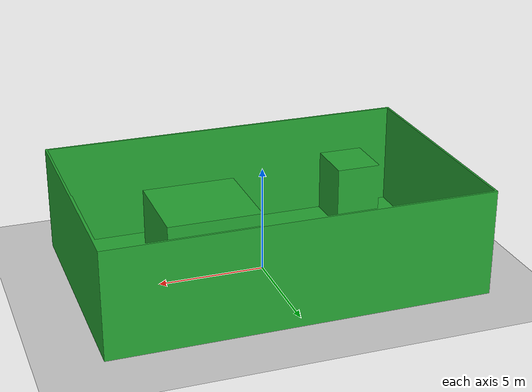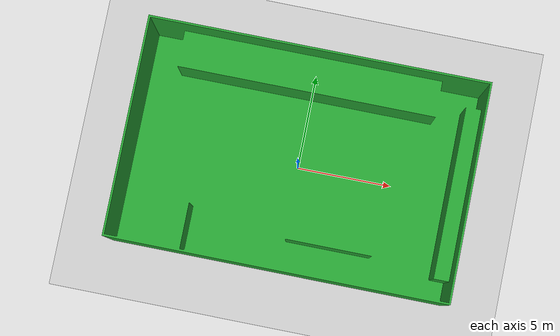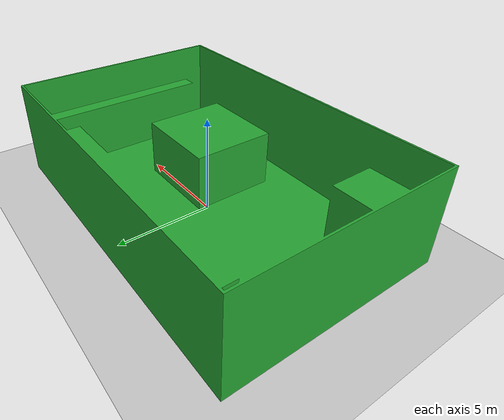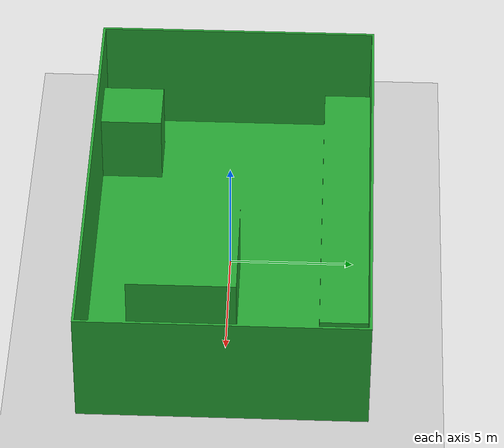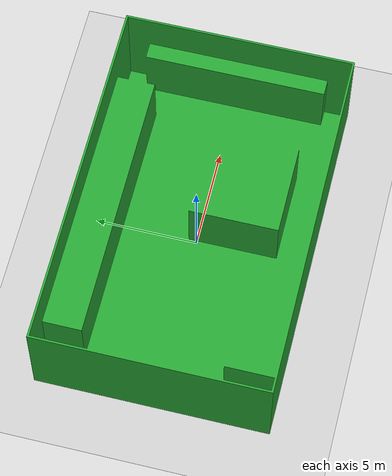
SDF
<?xml version="1.0" ?>
<sdf version="1.7">
  <world name="custom_models_world">
    <!-- A global light source -->
    <include>
      <uri>model://sun</uri>
    </include>

    <!-- Ground Plane -->
    <include>
      <uri>model://ground_plane</uri>
    </include>

    <!-- Physics settings -->
    <physics name='default_physics' default='0' type='ode'>
      <gravity>0 0 -9.8066</gravity>
      <ode>
        <solver>
          <type>quick</type>
          <iters>10</iters>
          <sor>1.3</sor>
          <use_dynamic_moi_rescaling>0</use_dynamic_moi_rescaling>
        </solver>
        <constraints>
          <cfm>0</cfm>
          <erp>0.2</erp>
          <contact_max_correcting_vel>100</contact_max_correcting_vel>
          <contact_surface_layer>0.001</contact_surface_layer>
        </constraints>
      </ode>
      <max_step_size>0.004</max_step_size>
      <real_time_factor>1</real_time_factor>
      <real_time_update_rate>250</real_time_update_rate>
      <magnetic_field>6.0e-6 2.3e-5 -4.2e-5</magnetic_field>
    </physics>

    <!-- Scene settings -->
    <scene>
      <ambient>0.4 0.4 0.4 1</ambient>
      <background>0.7 0.7 0.7 1</background>
      <shadows>true</shadows>
    </scene>

    <!-- GUI Camera -->
    <gui fullscreen='0'>
      <camera name='user_camera'>
        <pose>5 -5 2 0 0.275643 2.356190</pose>
        <view_controller>orbit</view_controller>
        <projection_type>perspective</projection_type>
      </camera>
    </gui>

    <!-- Custom STL Model (Field) -->
    <include>
      <uri>model://field_stl</uri>
      <pose>0 0 0 0 0 0</pose>
    </include>

    <!-- Custom DAE Model (Field) - Commented out to avoid duplication -->

    <!-- Example: Additional custom models can be added here -->

  </world>
</sdf>

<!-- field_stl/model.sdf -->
<sdf version="1.7">
  <model name="field_stl">
    <static>true</static>
    <pose>0 0 0 0 0 0</pose>

    <link name="link">
      <!-- Visual -->
      <visual name="visual">
        <geometry>
          <mesh>
            <uri>file:///home/iskhas/hunter_ws/src/ugv_sim/hunter_se/hunter_se_gazebo/meshes/stl/field.stl</uri>
            <scale>1.0 1.0 1.0</scale>
          </mesh>
        </geometry>
        <material>
          <script>
            <name>Gazebo/Green</name>
            <uri>file://media/materials/scripts/gazebo.material</uri>
          </script>
          <ambient>0.2 0.8 0.2 1.0</ambient>
          <diffuse>0.4 0.9 0.4 1.0</diffuse>
          <specular>0.1 0.1 0.1 1.0</specular>
        </material>
      </visual>

      <!-- Collision -->
      <collision name="collision">
        <geometry>
          <mesh>
            <uri>file:///home/iskhas/hunter_ws/src/ugv_sim/hunter_se/hunter_se_gazebo/meshes/stl/field.stl</uri>
            <scale>1.0 1.0 1.0</scale>
          </mesh>
        </geometry>
        <surface>
          <friction>
            <ode>
              <mu>1.0</mu>
              <mu2>1.0</mu2>
            </ode>
          </friction>
        </surface>
      </collision>

      <!-- Inertial -->
      <inertial>
        <mass>1.0</mass>
        <inertia>
          <ixx>1.0</ixx>
          <ixy>0.0</ixy>
          <ixz>0.0</ixz>
          <iyy>1.0</iyy>
          <iyz>0.0</iyz>
          <izz>1.0</izz>
        </inertia>
      </inertial>
    </link>
  </model>
</sdf>
